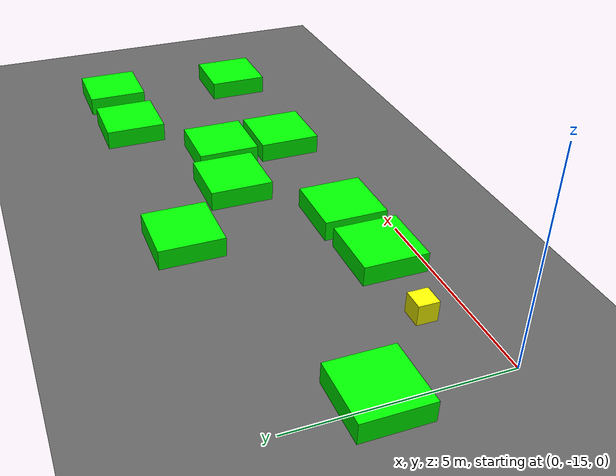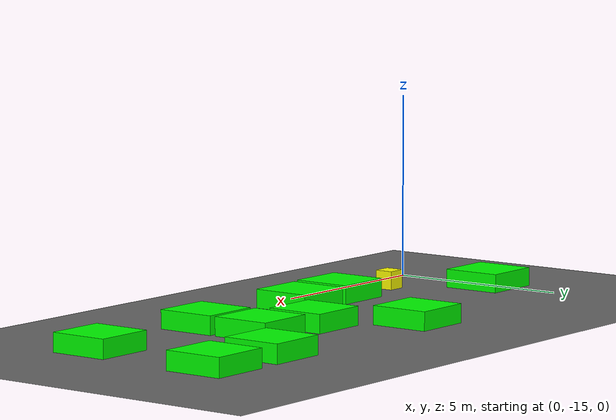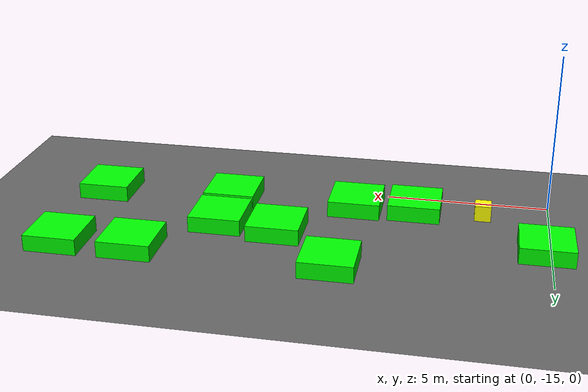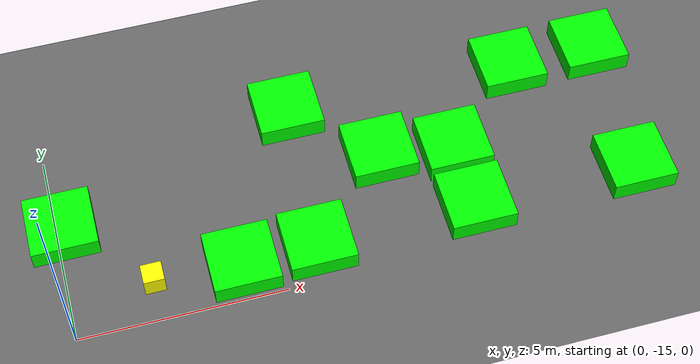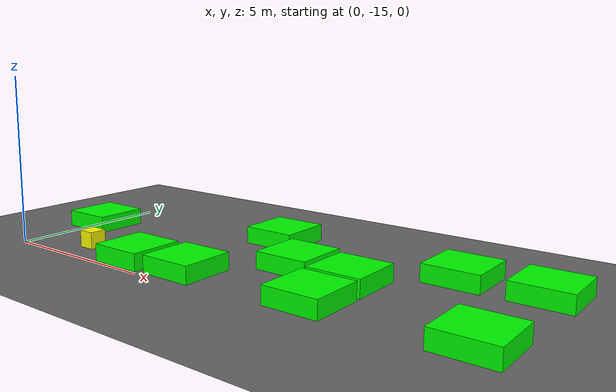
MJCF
<mujoco model="lvl4_standard_obs10_d10_seed0">
    <compiler angle="degree" coordinate="local" inertiafromgeom="true"/>
    <option integrator="RK4" timestep="0.01"/>

    <asset>
        <texture builtin="gradient" height="100" rgb1="0.6 0.8 1" rgb2="0 0 0" type="skybox" width="100"/>
        <texture name="floor_texture" type="2d" builtin="checker" width="100" height="100" rgb1="0 0 0" rgb2="0.8 0.8 0.8"/>
        <material name="MatPlane" reflectance="0.5" shininess="1" specular="1" texrepeat="10 10" texture="floor_texture"/>
    </asset>

    <!-- Excluding the contact between the agent and the goal, and the agent and the floor -->
    <contact>
        <exclude body1="agent" body2="goal"/>
        <exclude body1 = "agent" body2 = "floor"/>
    </contact>

    <extension>
        <plugin plugin = "mujoco.pid">
            <instance name = "pid1">
                <config key="kp" value="2"/>
                <config key="ki" value="0"/>
                <config key="kd" value="55"/>
            </instance>
        </plugin>
    </extension>

    <worldbody>
        <light cutoff="100" diffuse="1 1 1" dir="-0 0 -1.3" directional="true" exponent="1" pos="0 0 1.3" specular=".1 .1 .1"/>
        <body name="floor" pos="0 0 0">
            <geom name="floor_geom" type="plane" size="20 20 0.1" material="MatPlane"/>
        </body>

                <body name="goal" pos="12.0000 -12.0000 0">
            <geom name="goal_geom" type="plane" size="0.5 0.5 1" pos="0 0 0" rgba="1 0 0 1"/>
        </body>

                <body name="agent" pos="2.0000 -14.0000 0.250">
            <joint name="j1" type="slide" axis ="1 0 0 "/>
            <joint name="j2" type="slide" axis ="0 1 0 "/>
            <geom name="agent_geom" type="box" size="0.25 0.25 0.250" rgba="1 1 0 1"/>
        </body>

        <body name="obstacle1" pos="6.1484 -10.0482 0.250">  <geom name="obstacle1_geom" type="box" size="0.8000 0.8000 0.250" rgba="0 1 0 1"/></body>
        <body name="obstacle2" pos="11.9788 -10.1419 0.250">  <geom name="obstacle2_geom" type="box" size="0.8000 0.8000 0.250" rgba="0 1 0 1"/></body>
        <body name="obstacle3" pos="14.1915 -10.1132 0.250">  <geom name="obstacle3_geom" type="box" size="0.8000 0.8000 0.250" rgba="0 1 0 1"/></body>
        <body name="obstacle4" pos="0.1544 -12.0357 0.250">  <geom name="obstacle4_geom" type="box" size="0.8000 0.8000 0.250" rgba="0 1 0 1"/></body>
        <body name="obstacle5" pos="8.0443 -11.8983 0.250">  <geom name="obstacle5_geom" type="box" size="0.8000 0.8000 0.250" rgba="0 1 0 1"/></body>
        <body name="obstacle6" pos="9.8728 -12.1770 0.250">  <geom name="obstacle6_geom" type="box" size="0.8000 0.8000 0.250" rgba="0 1 0 1"/></body>
        <body name="obstacle7" pos="4.0876 -14.0950 0.250">  <geom name="obstacle7_geom" type="box" size="0.8000 0.8000 0.250" rgba="0 1 0 1"/></body>
        <body name="obstacle8" pos="5.9292 -14.0104 0.250">  <geom name="obstacle8_geom" type="box" size="0.8000 0.8000 0.250" rgba="0 1 0 1"/></body>
        <body name="obstacle9" pos="9.8810 -13.9240 0.250">  <geom name="obstacle9_geom" type="box" size="0.8000 0.8000 0.250" rgba="0 1 0 1"/></body>
        <body name="obstacle10" pos="13.9917 -13.8565 0.250">  <geom name="obstacle10_geom" type="box" size="0.8000 0.8000 0.250" rgba="0 1 0 1"/></body>

    </worldbody>

    <sensor>
<!-- SENSORS -->

        <distance name="dist1" geom1="agent_geom" geom2="obstacle1_geom" cutoff="1.5"/>
        <distance name="dist2" geom1="agent_geom" geom2="obstacle2_geom" cutoff="1.5"/>
        <distance name="dist3" geom1="agent_geom" geom2="obstacle3_geom" cutoff="1.5"/>
        <distance name="dist4" geom1="agent_geom" geom2="obstacle4_geom" cutoff="1.5"/>
        <distance name="dist5" geom1="agent_geom" geom2="obstacle5_geom" cutoff="1.5"/>
        <distance name="dist6" geom1="agent_geom" geom2="obstacle6_geom" cutoff="1.5"/>
        <distance name="dist7" geom1="agent_geom" geom2="obstacle7_geom" cutoff="1.5"/>
        <distance name="dist8" geom1="agent_geom" geom2="obstacle8_geom" cutoff="1.5"/>
        <distance name="dist9" geom1="agent_geom" geom2="obstacle9_geom" cutoff="1.5"/>
        <distance name="dist10" geom1="agent_geom" geom2="obstacle10_geom" cutoff="1.5"/>
</sensor>

    <actuator>
        <plugin joint="j1" plugin="mujoco.pid" instance="pid1" />
        <plugin joint="j2" plugin="mujoco.pid" instance="pid1"/>
    </actuator>
</mujoco>
